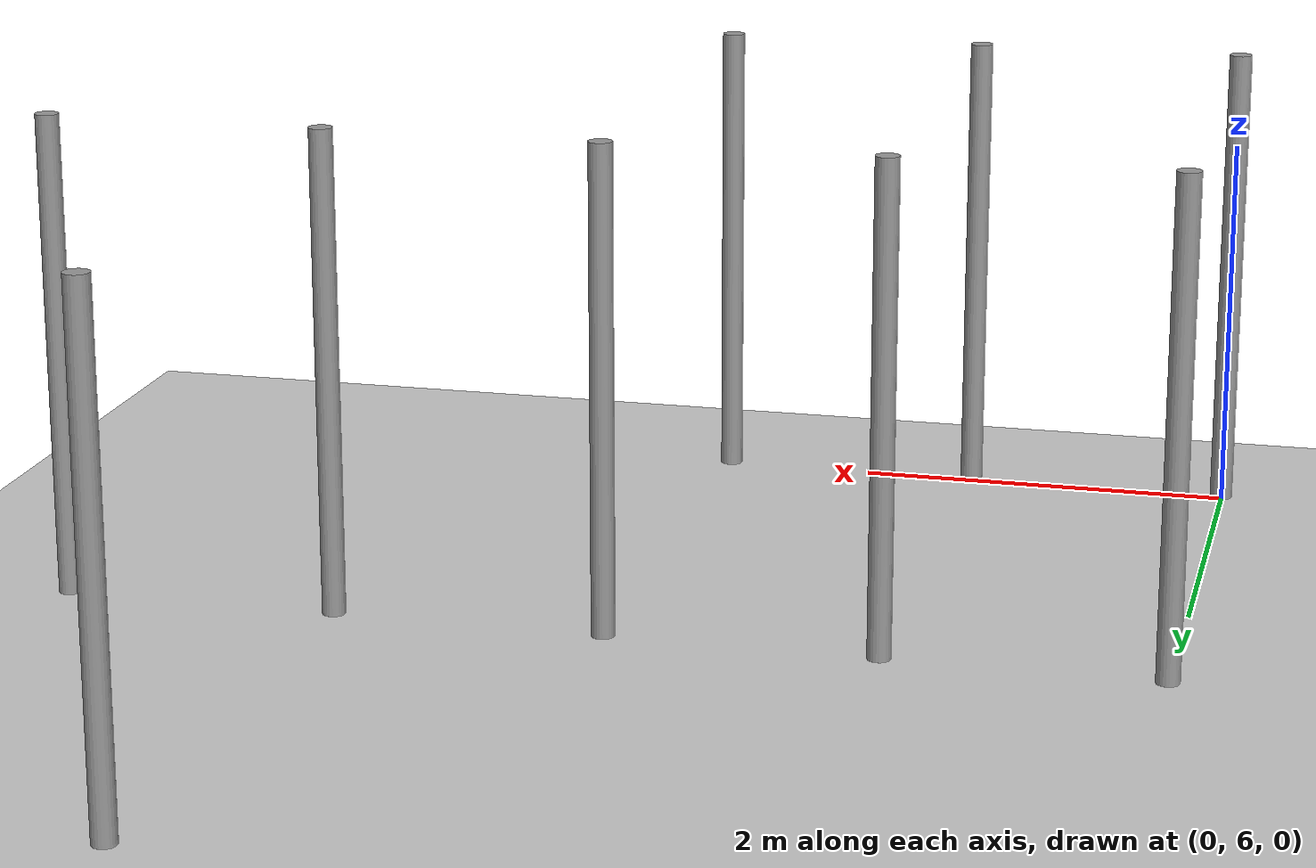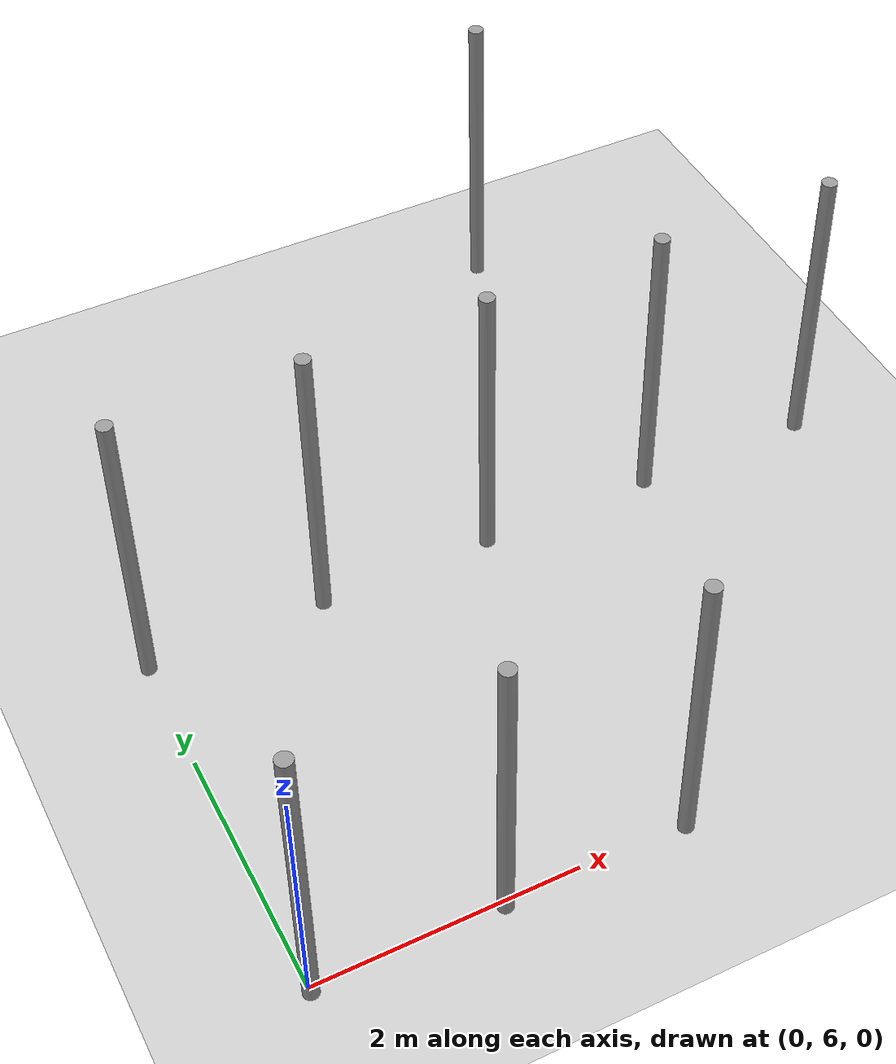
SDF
<sdf version="1.6">
 <world name="default">
  <model name="ground_plane">
   <static>1</static>
   <link name="link">
    <collision name="collision">
     <geometry><plane><normal>0 0 1</normal><size>100 100</size></plane></geometry>
     <surface><friction><ode><mu>100</mu><mu2>50</mu2></ode></friction></surface>
    </collision>
    <visual name="visual">
     <cast_shadows>0</cast_shadows>
     <geometry><plane><normal>0 0 1</normal><size>100 100</size></plane></geometry>
     <material>
      <script><uri>file://media/materials/scripts/gazebo.material</uri><name>Gazebo/Grey</name></script>
     </material>
    </visual>
   </link>
  </model>
  <model name="pole">
   <link name="link_0">
    <inertial>
     <mass>0.0364582</mass>
     <inertia>
      <ixx>0.00312124</ixx>
      <ixy>0</ixy>
      <ixz>0</ixz>
      <iyy>0.00312124</iyy>
      <iyz>0</iyz>
      <izz>0.00016615</izz>
     </inertia>
    </inertial>
    <visual name="visual">
     <geometry><cylinder><radius>0.06</radius><length>2.5</length></cylinder></geometry>
     <material>
      <lighting>1</lighting>
      <script><uri>file://media/materials/scripts/gazebo.material</uri><name>Gazebo/Grey</name></script>
      <ambient>0.3 0.3 0.3 1</ambient>
      <diffuse>0.7 0.7 0.7 1</diffuse>
      <specular>0.01 0.01 0.01 1</specular>
      <emissive>0 0 0 1</emissive>
      <shader type="vertex"><normal_map>__default__</normal_map></shader>
     </material>
    </visual>
    <collision name="collision">
     <geometry><cylinder><radius>0.06</radius><length>2.5</length></cylinder></geometry>
     <surface>
      <friction>
       <ode><mu>1</mu><mu2>1</mu2><fdir1>0 0 0</fdir1><slip1>0</slip1><slip2>0</slip2></ode>
       <torsional>
        <coefficient>1</coefficient>
        <patch_radius>0</patch_radius>
        <surface_radius>0</surface_radius>
        <use_patch_radius>1</use_patch_radius>
        <ode><slip>0</slip></ode>
       </torsional>
      </friction>
      <bounce><restitution_coefficient>0</restitution_coefficient><threshold>1e+06</threshold></bounce>
      <contact>
       <collide_without_contact>0</collide_without_contact>
       <collide_without_contact_bitmask>1</collide_without_contact_bitmask>
       <collide_bitmask>1</collide_bitmask>
       <ode>
        <soft_cfm>0</soft_cfm>
        <soft_erp>0.2</soft_erp>
        <kp>1e+13</kp>
        <kd>1</kd>
        <max_vel>0.01</max_vel>
        <min_depth>0</min_depth>
       </ode>
       <bullet>
        <split_impulse>1</split_impulse>
        <split_impulse_penetration_threshold>-0.01</split_impulse_penetration_threshold>
        <soft_cfm>0</soft_cfm>
        <soft_erp>0.2</soft_erp>
        <kp>1e+13</kp>
        <kd>1</kd>
       </bullet>
      </contact>
     </surface>
    </collision>
   </link>
   <static>0</static>
   <pose>0.006679 5.96129 1.24999 -0 1e-06 -0.013434</pose>
  </model>
  <model name="pole_0">
   <link name="link_0">
    <inertial>
     <mass>0.0364582</mass>
     <inertia>
      <ixx>0.00312124</ixx>
      <ixy>0</ixy>
      <ixz>0</ixz>
      <iyy>0.00312124</iyy>
      <iyz>0</iyz>
      <izz>0.00016615</izz>
     </inertia>
    </inertial>
    <visual name="visual">
     <geometry><cylinder><radius>0.06</radius><length>2.5</length></cylinder></geometry>
     <material>
      <lighting>1</lighting>
      <script><uri>file://media/materials/scripts/gazebo.material</uri><name>Gazebo/Grey</name></script>
      <ambient>0.3 0.3 0.3 1</ambient>
      <diffuse>0.7 0.7 0.7 1</diffuse>
      <specular>0.01 0.01 0.01 1</specular>
      <emissive>0 0 0 1</emissive>
      <shader type="vertex"><normal_map>__default__</normal_map></shader>
     </material>
    </visual>
    <collision name="collision">
     <geometry><cylinder><radius>0.06</radius><length>2.5</length></cylinder></geometry>
     <surface>
      <friction>
       <ode><mu>1</mu><mu2>1</mu2><fdir1>0 0 0</fdir1><slip1>0</slip1><slip2>0</slip2></ode>
       <torsional>
        <coefficient>1</coefficient>
        <patch_radius>0</patch_radius>
        <surface_radius>0</surface_radius>
        <use_patch_radius>1</use_patch_radius>
        <ode><slip>0</slip></ode>
       </torsional>
      </friction>
      <bounce><restitution_coefficient>0</restitution_coefficient><threshold>1e+06</threshold></bounce>
      <contact>
       <collide_without_contact>0</collide_without_contact>
       <collide_without_contact_bitmask>1</collide_without_contact_bitmask>
       <collide_bitmask>1</collide_bitmask>
       <ode>
        <soft_cfm>0</soft_cfm>
        <soft_erp>0.2</soft_erp>
        <kp>1e+13</kp>
        <kd>1</kd>
        <max_vel>0.01</max_vel>
        <min_depth>0</min_depth>
       </ode>
       <bullet>
        <split_impulse>1</split_impulse>
        <split_impulse_penetration_threshold>-0.01</split_impulse_penetration_threshold>
        <soft_cfm>0</soft_cfm>
        <soft_erp>0.2</soft_erp>
        <kp>1e+13</kp>
        <kd>1</kd>
       </bullet>
      </contact>
     </surface>
    </collision>
   </link>
   <static>0</static>
   <pose>0.013487 8.9413 1.25 1e-06 3e-06 -0.016282</pose>
  </model>
  <model name="pole_12">
   <link name="link_0">
    <inertial>
     <mass>0.0364582</mass>
     <inertia>
      <ixx>0.00312124</ixx>
      <ixy>0</ixy>
      <ixz>0</ixz>
      <iyy>0.00312124</iyy>
      <iyz>0</iyz>
      <izz>0.00016615</izz>
     </inertia>
    </inertial>
    <visual name="visual">
     <geometry><cylinder><radius>0.06</radius><length>2.5</length></cylinder></geometry>
     <material>
      <lighting>1</lighting>
      <script><uri>file://media/materials/scripts/gazebo.material</uri><name>Gazebo/Grey</name></script>
      <ambient>0.3 0.3 0.3 1</ambient>
      <diffuse>0.7 0.7 0.7 1</diffuse>
      <specular>0.01 0.01 0.01 1</specular>
      <emissive>0 0 0 1</emissive>
      <shader type="vertex"><normal_map>__default__</normal_map></shader>
     </material>
    </visual>
    <collision name="collision">
     <geometry><cylinder><radius>0.06</radius><length>2.5</length></cylinder></geometry>
     <surface>
      <friction>
       <ode><mu>1</mu><mu2>1</mu2><fdir1>0 0 0</fdir1><slip1>0</slip1><slip2>0</slip2></ode>
       <torsional>
        <coefficient>1</coefficient>
        <patch_radius>0</patch_radius>
        <surface_radius>0</surface_radius>
        <use_patch_radius>1</use_patch_radius>
        <ode><slip>0</slip></ode>
       </torsional>
      </friction>
      <bounce><restitution_coefficient>0</restitution_coefficient><threshold>1e+06</threshold></bounce>
      <contact>
       <collide_without_contact>0</collide_without_contact>
       <collide_without_contact_bitmask>1</collide_without_contact_bitmask>
       <collide_bitmask>1</collide_bitmask>
       <ode>
        <soft_cfm>0</soft_cfm>
        <soft_erp>0.2</soft_erp>
        <kp>1e+13</kp>
        <kd>1</kd>
        <max_vel>0.01</max_vel>
        <min_depth>0</min_depth>
       </ode>
       <bullet>
        <split_impulse>1</split_impulse>
        <split_impulse_penetration_threshold>-0.01</split_impulse_penetration_threshold>
        <soft_cfm>0</soft_cfm>
        <soft_erp>0.2</soft_erp>
        <kp>1e+13</kp>
        <kd>1</kd>
       </bullet>
      </contact>
     </surface>
    </collision>
   </link>
   <static>0</static>
   <pose>1.41361 5.96106 1.24999 0 1e-06 -0.011074</pose>
  </model>
  <model name="pole_13">
   <link name="link_0">
    <inertial>
     <mass>0.0364582</mass>
     <inertia>
      <ixx>0.00312124</ixx>
      <ixy>0</ixy>
      <ixz>0</ixz>
      <iyy>0.00312124</iyy>
      <iyz>0</iyz>
      <izz>0.00016615</izz>
     </inertia>
    </inertial>
    <visual name="visual">
     <geometry><cylinder><radius>0.06</radius><length>2.5</length></cylinder></geometry>
     <material>
      <lighting>1</lighting>
      <script><uri>file://media/materials/scripts/gazebo.material</uri><name>Gazebo/Grey</name></script>
      <ambient>0.3 0.3 0.3 1</ambient>
      <diffuse>0.7 0.7 0.7 1</diffuse>
      <specular>0.01 0.01 0.01 1</specular>
      <emissive>0 0 0 1</emissive>
      <shader type="vertex"><normal_map>__default__</normal_map></shader>
     </material>
    </visual>
    <collision name="collision">
     <geometry><cylinder><radius>0.06</radius><length>2.5</length></cylinder></geometry>
     <surface>
      <friction>
       <ode><mu>1</mu><mu2>1</mu2><fdir1>0 0 0</fdir1><slip1>0</slip1><slip2>0</slip2></ode>
       <torsional>
        <coefficient>1</coefficient>
        <patch_radius>0</patch_radius>
        <surface_radius>0</surface_radius>
        <use_patch_radius>1</use_patch_radius>
        <ode><slip>0</slip></ode>
       </torsional>
      </friction>
      <bounce><restitution_coefficient>0</restitution_coefficient><threshold>1e+06</threshold></bounce>
      <contact>
       <collide_without_contact>0</collide_without_contact>
       <collide_without_contact_bitmask>1</collide_without_contact_bitmask>
       <collide_bitmask>1</collide_bitmask>
       <ode>
        <soft_cfm>0</soft_cfm>
        <soft_erp>0.2</soft_erp>
        <kp>1e+13</kp>
        <kd>1</kd>
        <max_vel>0.01</max_vel>
        <min_depth>0</min_depth>
       </ode>
       <bullet>
        <split_impulse>1</split_impulse>
        <split_impulse_penetration_threshold>-0.01</split_impulse_penetration_threshold>
        <soft_cfm>0</soft_cfm>
        <soft_erp>0.2</soft_erp>
        <kp>1e+13</kp>
        <kd>1</kd>
       </bullet>
      </contact>
     </surface>
    </collision>
   </link>
   <static>0</static>
   <pose>2.80801 5.9611 1.24999 -0 2e-06 -0.010433</pose>
  </model>
  <model name="pole_16">
   <link name="link_0">
    <inertial>
     <mass>0.0364582</mass>
     <inertia>
      <ixx>0.00312124</ixx>
      <ixy>0</ixy>
      <ixz>0</ixz>
      <iyy>0.00312124</iyy>
      <iyz>0</iyz>
      <izz>0.00016615</izz>
     </inertia>
    </inertial>
    <visual name="visual">
     <geometry><cylinder><radius>0.06</radius><length>2.5</length></cylinder></geometry>
     <material>
      <lighting>1</lighting>
      <script><uri>file://media/materials/scripts/gazebo.material</uri><name>Gazebo/Grey</name></script>
      <ambient>0.3 0.3 0.3 1</ambient>
      <diffuse>0.7 0.7 0.7 1</diffuse>
      <specular>0.01 0.01 0.01 1</specular>
      <emissive>0 0 0 1</emissive>
      <shader type="vertex"><normal_map>__default__</normal_map></shader>
     </material>
    </visual>
    <collision name="collision">
     <geometry><cylinder><radius>0.06</radius><length>2.5</length></cylinder></geometry>
     <surface>
      <friction>
       <ode><mu>1</mu><mu2>1</mu2><fdir1>0 0 0</fdir1><slip1>0</slip1><slip2>0</slip2></ode>
       <torsional>
        <coefficient>1</coefficient>
        <patch_radius>0</patch_radius>
        <surface_radius>0</surface_radius>
        <use_patch_radius>1</use_patch_radius>
        <ode><slip>0</slip></ode>
       </torsional>
      </friction>
      <bounce><restitution_coefficient>0</restitution_coefficient><threshold>1e+06</threshold></bounce>
      <contact>
       <collide_without_contact>0</collide_without_contact>
       <collide_without_contact_bitmask>1</collide_without_contact_bitmask>
       <collide_bitmask>1</collide_bitmask>
       <ode>
        <soft_cfm>0</soft_cfm>
        <soft_erp>0.2</soft_erp>
        <kp>1e+13</kp>
        <kd>1</kd>
        <max_vel>0.01</max_vel>
        <min_depth>0</min_depth>
       </ode>
       <bullet>
        <split_impulse>1</split_impulse>
        <split_impulse_penetration_threshold>-0.01</split_impulse_penetration_threshold>
        <soft_cfm>0</soft_cfm>
        <soft_erp>0.2</soft_erp>
        <kp>1e+13</kp>
        <kd>1</kd>
       </bullet>
      </contact>
     </surface>
    </collision>
   </link>
   <static>0</static>
   <pose>1.4131 8.94056 1.24999 -1e-06 -0 -0.011505</pose>
  </model>
  <model name="pole_17">
   <link name="link_0">
    <inertial>
     <mass>0.0364582</mass>
     <inertia>
      <ixx>0.00312124</ixx>
      <ixy>0</ixy>
      <ixz>0</ixz>
      <iyy>0.00312124</iyy>
      <iyz>0</iyz>
      <izz>0.00016615</izz>
     </inertia>
    </inertial>
    <visual name="visual">
     <geometry><cylinder><radius>0.06</radius><length>2.5</length></cylinder></geometry>
     <material>
      <lighting>1</lighting>
      <script><uri>file://media/materials/scripts/gazebo.material</uri><name>Gazebo/Grey</name></script>
      <ambient>0.3 0.3 0.3 1</ambient>
      <diffuse>0.7 0.7 0.7 1</diffuse>
      <specular>0.01 0.01 0.01 1</specular>
      <emissive>0 0 0 1</emissive>
      <shader type="vertex"><normal_map>__default__</normal_map></shader>
     </material>
    </visual>
    <collision name="collision">
     <geometry><cylinder><radius>0.06</radius><length>2.5</length></cylinder></geometry>
     <surface>
      <friction>
       <ode><mu>1</mu><mu2>1</mu2><fdir1>0 0 0</fdir1><slip1>0</slip1><slip2>0</slip2></ode>
       <torsional>
        <coefficient>1</coefficient>
        <patch_radius>0</patch_radius>
        <surface_radius>0</surface_radius>
        <use_patch_radius>1</use_patch_radius>
        <ode><slip>0</slip></ode>
       </torsional>
      </friction>
      <bounce><restitution_coefficient>0</restitution_coefficient><threshold>1e+06</threshold></bounce>
      <contact>
       <collide_without_contact>0</collide_without_contact>
       <collide_without_contact_bitmask>1</collide_without_contact_bitmask>
       <collide_bitmask>1</collide_bitmask>
       <ode>
        <soft_cfm>0</soft_cfm>
        <soft_erp>0.2</soft_erp>
        <kp>1e+13</kp>
        <kd>1</kd>
        <max_vel>0.01</max_vel>
        <min_depth>0</min_depth>
       </ode>
       <bullet>
        <split_impulse>1</split_impulse>
        <split_impulse_penetration_threshold>-0.01</split_impulse_penetration_threshold>
        <soft_cfm>0</soft_cfm>
        <soft_erp>0.2</soft_erp>
        <kp>1e+13</kp>
        <kd>1</kd>
       </bullet>
      </contact>
     </surface>
    </collision>
   </link>
   <static>0</static>
   <pose>2.79984 8.94076 1.25 -1e-06 -2e-06 -0.007995</pose>
  </model>
  <model name="pole_18">
   <link name="link_0">
    <inertial>
     <mass>0.0364582</mass>
     <inertia>
      <ixx>0.00312124</ixx>
      <ixy>0</ixy>
      <ixz>0</ixz>
      <iyy>0.00312124</iyy>
      <iyz>0</iyz>
      <izz>0.00016615</izz>
     </inertia>
    </inertial>
    <visual name="visual">
     <geometry><cylinder><radius>0.06</radius><length>2.5</length></cylinder></geometry>
     <material>
      <lighting>1</lighting>
      <script><uri>file://media/materials/scripts/gazebo.material</uri><name>Gazebo/Grey</name></script>
      <ambient>0.3 0.3 0.3 1</ambient>
      <diffuse>0.7 0.7 0.7 1</diffuse>
      <specular>0.01 0.01 0.01 1</specular>
      <emissive>0 0 0 1</emissive>
      <shader type="vertex"><normal_map>__default__</normal_map></shader>
     </material>
    </visual>
    <collision name="collision">
     <geometry><cylinder><radius>0.06</radius><length>2.5</length></cylinder></geometry>
     <surface>
      <friction>
       <ode><mu>1</mu><mu2>1</mu2><fdir1>0 0 0</fdir1><slip1>0</slip1><slip2>0</slip2></ode>
       <torsional>
        <coefficient>1</coefficient>
        <patch_radius>0</patch_radius>
        <surface_radius>0</surface_radius>
        <use_patch_radius>1</use_patch_radius>
        <ode><slip>0</slip></ode>
       </torsional>
      </friction>
      <bounce><restitution_coefficient>0</restitution_coefficient><threshold>1e+06</threshold></bounce>
      <contact>
       <collide_without_contact>0</collide_without_contact>
       <collide_without_contact_bitmask>1</collide_without_contact_bitmask>
       <collide_bitmask>1</collide_bitmask>
       <ode>
        <soft_cfm>0</soft_cfm>
        <soft_erp>0.2</soft_erp>
        <kp>1e+13</kp>
        <kd>1</kd>
        <max_vel>0.01</max_vel>
        <min_depth>0</min_depth>
       </ode>
       <bullet>
        <split_impulse>1</split_impulse>
        <split_impulse_penetration_threshold>-0.01</split_impulse_penetration_threshold>
        <soft_cfm>0</soft_cfm>
        <soft_erp>0.2</soft_erp>
        <kp>1e+13</kp>
        <kd>1</kd>
       </bullet>
      </contact>
     </surface>
    </collision>
   </link>
   <static>0</static>
   <pose>4.20386 8.94064 1.24999 -1e-06 3e-06 -0.007315</pose>
  </model>
  <model name="pole_19">
   <link name="link_0">
    <inertial>
     <mass>0.0364582</mass>
     <inertia>
      <ixx>0.00312124</ixx>
      <ixy>0</ixy>
      <ixz>0</ixz>
      <iyy>0.00312124</iyy>
      <iyz>0</iyz>
      <izz>0.00016615</izz>
     </inertia>
    </inertial>
    <visual name="visual">
     <geometry><cylinder><radius>0.06</radius><length>2.5</length></cylinder></geometry>
     <material>
      <lighting>1</lighting>
      <script><uri>file://media/materials/scripts/gazebo.material</uri><name>Gazebo/Grey</name></script>
      <ambient>0.3 0.3 0.3 1</ambient>
      <diffuse>0.7 0.7 0.7 1</diffuse>
      <specular>0.01 0.01 0.01 1</specular>
      <emissive>0 0 0 1</emissive>
      <shader type="vertex"><normal_map>__default__</normal_map></shader>
     </material>
    </visual>
    <collision name="collision">
     <geometry><cylinder><radius>0.06</radius><length>2.5</length></cylinder></geometry>
     <surface>
      <friction>
       <ode><mu>1</mu><mu2>1</mu2><fdir1>0 0 0</fdir1><slip1>0</slip1><slip2>0</slip2></ode>
       <torsional>
        <coefficient>1</coefficient>
        <patch_radius>0</patch_radius>
        <surface_radius>0</surface_radius>
        <use_patch_radius>1</use_patch_radius>
        <ode><slip>0</slip></ode>
       </torsional>
      </friction>
      <bounce><restitution_coefficient>0</restitution_coefficient><threshold>1e+06</threshold></bounce>
      <contact>
       <collide_without_contact>0</collide_without_contact>
       <collide_without_contact_bitmask>1</collide_without_contact_bitmask>
       <collide_bitmask>1</collide_bitmask>
       <ode>
        <soft_cfm>0</soft_cfm>
        <soft_erp>0.2</soft_erp>
        <kp>1e+13</kp>
        <kd>1</kd>
        <max_vel>0.01</max_vel>
        <min_depth>0</min_depth>
       </ode>
       <bullet>
        <split_impulse>1</split_impulse>
        <split_impulse_penetration_threshold>-0.01</split_impulse_penetration_threshold>
        <soft_cfm>0</soft_cfm>
        <soft_erp>0.2</soft_erp>
        <kp>1e+13</kp>
        <kd>1</kd>
       </bullet>
      </contact>
     </surface>
    </collision>
   </link>
   <static>0</static>
   <pose>5.62932 8.94069 1.25 0 1e-06 -0.007692</pose>
  </model>
  <model name="pole_22">
   <link name="link_0">
    <inertial>
     <mass>0.0364582</mass>
     <inertia>
      <ixx>0.00312124</ixx>
      <ixy>0</ixy>
      <ixz>0</ixz>
      <iyy>0.00312124</iyy>
      <iyz>0</iyz>
      <izz>0.00016615</izz>
     </inertia>
    </inertial>
    <visual name="visual">
     <geometry><cylinder><radius>0.06</radius><length>2.5</length></cylinder></geometry>
     <material>
      <lighting>1</lighting>
      <script><uri>file://media/materials/scripts/gazebo.material</uri><name>Gazebo/Grey</name></script>
      <ambient>0.3 0.3 0.3 1</ambient>
      <diffuse>0.7 0.7 0.7 1</diffuse>
      <specular>0.01 0.01 0.01 1</specular>
      <emissive>0 0 0 1</emissive>
      <shader type="vertex"><normal_map>__default__</normal_map></shader>
     </material>
    </visual>
    <collision name="collision">
     <geometry><cylinder><radius>0.06</radius><length>2.5</length></cylinder></geometry>
     <surface>
      <friction>
       <ode><mu>1</mu><mu2>1</mu2><fdir1>0 0 0</fdir1><slip1>0</slip1><slip2>0</slip2></ode>
       <torsional>
        <coefficient>1</coefficient>
        <patch_radius>0</patch_radius>
        <surface_radius>0</surface_radius>
        <use_patch_radius>1</use_patch_radius>
        <ode><slip>0</slip></ode>
       </torsional>
      </friction>
      <bounce><restitution_coefficient>0</restitution_coefficient><threshold>1e+06</threshold></bounce>
      <contact>
       <collide_without_contact>0</collide_without_contact>
       <collide_without_contact_bitmask>1</collide_without_contact_bitmask>
       <collide_bitmask>1</collide_bitmask>
       <ode>
        <soft_cfm>0</soft_cfm>
        <soft_erp>0.2</soft_erp>
        <kp>1e+13</kp>
        <kd>1</kd>
        <max_vel>0.01</max_vel>
        <min_depth>0</min_depth>
       </ode>
       <bullet>
        <split_impulse>1</split_impulse>
        <split_impulse_penetration_threshold>-0.01</split_impulse_penetration_threshold>
        <soft_cfm>0</soft_cfm>
        <soft_erp>0.2</soft_erp>
        <kp>1e+13</kp>
        <kd>1</kd>
       </bullet>
      </contact>
     </surface>
    </collision>
   </link>
   <static>0</static>
   <pose>4.21208 11.9004 1.25 1e-06 -4e-06 -0.005319</pose>
  </model>
 </world>
</sdf>
